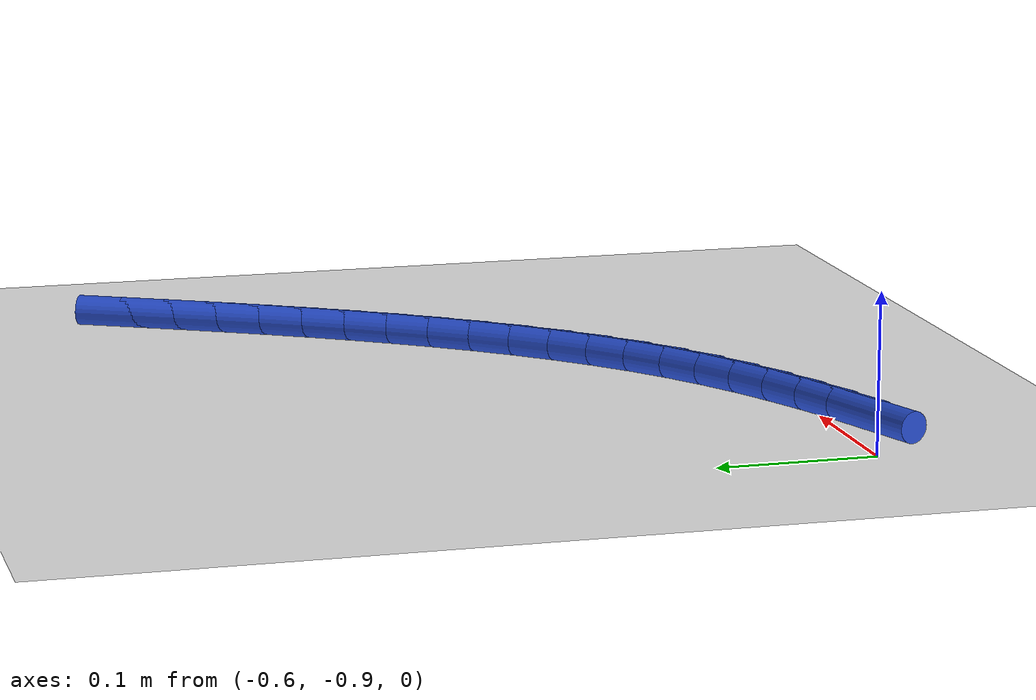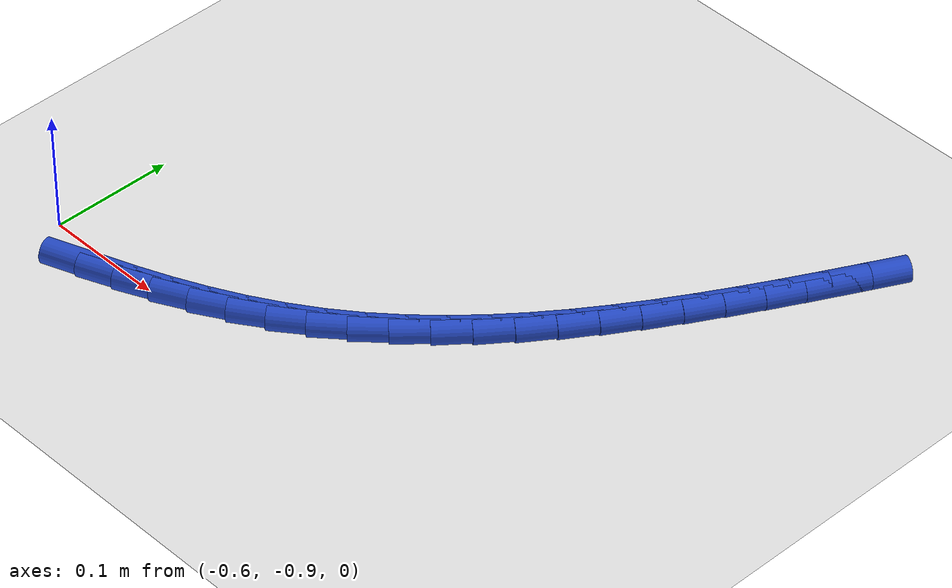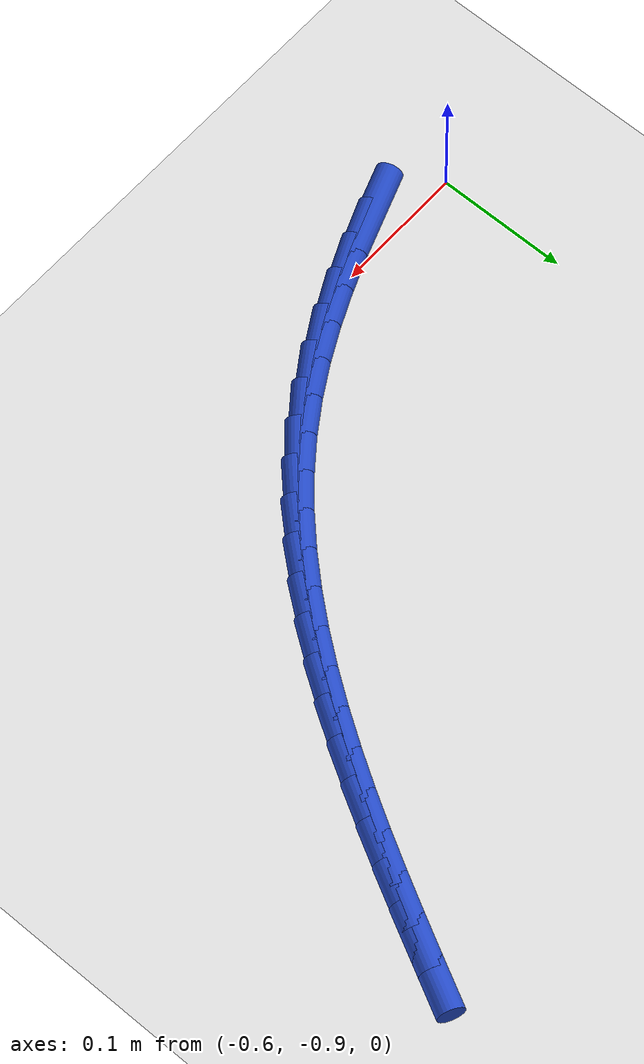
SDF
<sdf version="1.6">
 <world name="default">
  <model name="ground_plane">
   <static>1</static>
   <link name="link">
    <collision name="collision">
     <geometry><plane><normal>0 0 1</normal><size>100 100</size></plane></geometry>
     <surface><friction><ode><mu>100</mu><mu2>50</mu2></ode></friction></surface>
    </collision>
    <visual name="visual">
     <cast_shadows>0</cast_shadows>
     <geometry><plane><normal>0 0 1</normal><size>100 100</size></plane></geometry>
     <material>
      <script><uri>file://media/materials/scripts/gazebo.material</uri><name>Gazebo/WhiteGlow</name></script>
     </material>
    </visual>
   </link>
  </model>
  <model name="line">
   <link name="link_192">
    <pose>-0.5391859817253805 -0.918216924662417 0.01 0 1.57 0.349938042309466</pose>
    <collision name="collision">
     <geometry><cylinder><radius>0.01</radius><length>0.08</length></cylinder></geometry>
    </collision>
    <visual name="visual">
     <material>
      <script><name>Gazebo/Blue</name><uri>file://media/materials/scripts/gazebo.material</uri></script>
     </material>
     <geometry><cylinder><radius>0.01</radius><length>0.08</length></cylinder></geometry>
    </visual>
   </link>
   <link name="link_193">
    <pose>-0.5111279198154488 -0.9079769025599376 0.01 0 1.57 0.38640687018755976</pose>
    <collision name="collision">
     <geometry><cylinder><radius>0.01</radius><length>0.08</length></cylinder></geometry>
    </collision>
    <visual name="visual">
     <material>
      <script><name>Gazebo/Blue</name><uri>file://media/materials/scripts/gazebo.material</uri></script>
     </material>
     <geometry><cylinder><radius>0.01</radius><length>0.08</length></cylinder></geometry>
    </visual>
   </link>
   <link name="link_194">
    <pose>-0.4835524529734485 -0.8967575248321364 0.01 0 1.57 0.4286535217318709</pose>
    <collision name="collision">
     <geometry><cylinder><radius>0.01</radius><length>0.08</length></cylinder></geometry>
    </collision>
    <visual name="visual">
     <material>
      <script><name>Gazebo/Blue</name><uri>file://media/materials/scripts/gazebo.material</uri></script>
     </material>
     <geometry><cylinder><radius>0.01</radius><length>0.08</length></cylinder></geometry>
    </visual>
   </link>
   <link name="link_195">
    <pose>-0.4566134968838005 -0.884446628228901 0.01 0 1.57 0.4770278450383492</pose>
    <collision name="collision">
     <geometry><cylinder><radius>0.01</radius><length>0.08</length></cylinder></geometry>
    </collision>
    <visual name="visual">
     <material>
      <script><name>Gazebo/Blue</name><uri>file://media/materials/scripts/gazebo.material</uri></script>
     </material>
     <geometry><cylinder><radius>0.01</radius><length>0.08</length></cylinder></geometry>
    </visual>
   </link>
   <link name="link_196">
    <pose>-0.43046496723092553 -0.870932049500119 0.01 0 1.57 0.5318546804133581</pose>
    <collision name="collision">
     <geometry><cylinder><radius>0.01</radius><length>0.08</length></cylinder></geometry>
    </collision>
    <visual name="visual">
     <material>
      <script><name>Gazebo/Blue</name><uri>file://media/materials/scripts/gazebo.material</uri></script>
     </material>
     <geometry><cylinder><radius>0.01</radius><length>0.08</length></cylinder></geometry>
    </visual>
   </link>
   <link name="link_197">
    <pose>-0.4052607796992438 -0.8561016253956775 0.01 0 1.57 0.5933770984168789</pose>
    <collision name="collision">
     <geometry><cylinder><radius>0.01</radius><length>0.08</length></cylinder></geometry>
    </collision>
    <visual name="visual">
     <material>
      <script><name>Gazebo/Blue</name><uri>file://media/materials/scripts/gazebo.material</uri></script>
     </material>
     <geometry><cylinder><radius>0.01</radius><length>0.08</length></cylinder></geometry>
    </visual>
   </link>
   <link name="link_198">
    <pose>-0.38115484997317733 -0.839843192665465 0.01 0 1.57 0.659875297042908</pose>
    <collision name="collision">
     <geometry><cylinder><radius>0.01</radius><length>0.08</length></cylinder></geometry>
    </collision>
    <visual name="visual">
     <material>
      <script><name>Gazebo/Blue</name><uri>file://media/materials/scripts/gazebo.material</uri></script>
     </material>
     <geometry><cylinder><radius>0.01</radius><length>0.08</length></cylinder></geometry>
    </visual>
   </link>
   <link name="link_199">
    <pose>-0.35826386205185823 -0.8220819580318626 0.01 0 1.57 0.7235584872093481</pose>
    <collision name="collision">
     <geometry><cylinder><radius>0.01</radius><length>0.08</length></cylinder></geometry>
    </collision>
    <visual name="visual">
     <material>
      <script><name>Gazebo/Blue</name><uri>file://media/materials/scripts/gazebo.material</uri></script>
     </material>
     <geometry><cylinder><radius>0.01</radius><length>0.08</length></cylinder></geometry>
    </visual>
   </link>
   <link name="link_200">
    <pose>-0.33654889305603963 -0.8028993130560479 0.01 0 1.57 0.7820733373587231</pose>
    <collision name="collision">
     <geometry><cylinder><radius>0.01</radius><length>0.08</length></cylinder></geometry>
    </collision>
    <visual name="visual">
     <material>
      <script><name>Gazebo/Blue</name><uri>file://media/materials/scripts/gazebo.material</uri></script>
     </material>
     <geometry><cylinder><radius>0.01</radius><length>0.08</length></cylinder></geometry>
    </visual>
   </link>
   <link name="link_201">
    <pose>-0.315930374119074 -0.7824174462553238 0.01 0 1.57 0.8352171901902029</pose>
    <collision name="collision">
     <geometry><cylinder><radius>0.01</radius><length>0.08</length></cylinder></geometry>
    </collision>
    <visual name="visual">
     <material>
      <script><name>Gazebo/Blue</name><uri>file://media/materials/scripts/gazebo.material</uri></script>
     </material>
     <geometry><cylinder><radius>0.01</radius><length>0.08</length></cylinder></geometry>
    </visual>
   </link>
   <link name="link_202">
    <pose>-0.2963287362526029 -0.7607585462691574 0.01 0 1.57 0.8829514070810424</pose>
    <collision name="collision">
     <geometry><cylinder><radius>0.01</radius><length>0.08</length></cylinder></geometry>
    </collision>
    <visual name="visual">
     <material>
      <script><name>Gazebo/Blue</name><uri>file://media/materials/scripts/gazebo.material</uri></script>
     </material>
     <geometry><cylinder><radius>0.01</radius><length>0.08</length></cylinder></geometry>
    </visual>
   </link>
   <link name="link_203">
    <pose>-0.27766441046826756 -0.7380448017370149 0.01 0 1.57 0.9253552267350579</pose>
    <collision name="collision">
     <geometry><cylinder><radius>0.01</radius><length>0.08</length></cylinder></geometry>
    </collision>
    <visual name="visual">
     <material>
      <script><name>Gazebo/Blue</name><uri>file://media/materials/scripts/gazebo.material</uri></script>
     </material>
     <geometry><cylinder><radius>0.01</radius><length>0.08</length></cylinder></geometry>
    </visual>
   </link>
   <link name="link_204">
    <pose>-0.2598578277777086 -0.7143984012983619 0.01 0 1.57 0.96258291801277</pose>
    <collision name="collision">
     <geometry><cylinder><radius>0.01</radius><length>0.08</length></cylinder></geometry>
    </collision>
    <visual name="visual">
     <material>
      <script><name>Gazebo/Blue</name><uri>file://media/materials/scripts/gazebo.material</uri></script>
     </material>
     <geometry><cylinder><radius>0.01</radius><length>0.08</length></cylinder></geometry>
    </visual>
   </link>
   <link name="link_205">
    <pose>-0.2428294191925675 -0.6899415335926653 0.01 0 1.57 0.994827757308619</pose>
    <collision name="collision">
     <geometry><cylinder><radius>0.01</radius><length>0.08</length></cylinder></geometry>
    </collision>
    <visual name="visual">
     <material>
      <script><name>Gazebo/Blue</name><uri>file://media/materials/scripts/gazebo.material</uri></script>
     </material>
     <geometry><cylinder><radius>0.01</radius><length>0.08</length></cylinder></geometry>
    </visual>
   </link>
   <link name="link_206">
    <pose>-0.2264996157244849 -0.6647963872593904 0.01 0 1.57 1.022293787869417</pose>
    <collision name="collision">
     <geometry><cylinder><radius>0.01</radius><length>0.08</length></cylinder></geometry>
    </collision>
    <visual name="visual">
     <material>
      <script><name>Gazebo/Blue</name><uri>file://media/materials/scripts/gazebo.material</uri></script>
     </material>
     <geometry><cylinder><radius>0.01</radius><length>0.08</length></cylinder></geometry>
    </visual>
   </link>
   <link name="link_207">
    <pose>-0.2107888483851029 -0.6390851509380052 0.01 0 1.57 1.0451747598311993</pose>
    <collision name="collision">
     <geometry><cylinder><radius>0.01</radius><length>0.08</length></cylinder></geometry>
    </collision>
    <visual name="visual">
     <material>
      <script><name>Gazebo/Blue</name><uri>file://media/materials/scripts/gazebo.material</uri></script>
     </material>
     <geometry><cylinder><radius>0.01</radius><length>0.08</length></cylinder></geometry>
    </visual>
   </link>
   <link name="link_208">
    <pose>-0.19561754818606206 -0.6129300132679747 0.01 0 1.57 1.0636389267598962</pose>
    <collision name="collision">
     <geometry><cylinder><radius>0.01</radius><length>0.08</length></cylinder></geometry>
    </collision>
    <visual name="visual">
     <material>
      <script><name>Gazebo/Blue</name><uri>file://media/materials/scripts/gazebo.material</uri></script>
     </material>
     <geometry><cylinder><radius>0.01</radius><length>0.08</length></cylinder></geometry>
    </visual>
   </link>
   <link name="link_209">
    <pose>-0.1809061461390036 -0.5864531628887656 0.01 0 1.57 1.0778181954689197</pose>
    <collision name="collision">
     <geometry><cylinder><radius>0.01</radius><length>0.08</length></cylinder></geometry>
    </collision>
    <visual name="visual">
     <material>
      <script><name>Gazebo/Blue</name><uri>file://media/materials/scripts/gazebo.material</uri></script>
     </material>
     <geometry><cylinder><radius>0.01</radius><length>0.08</length></cylinder></geometry>
    </visual>
   </link>
   <link name="link_210">
    <pose>-0.1665750732555684 -0.5597767884398436 0.01 0 1.57 1.0878002380902496</pose>
    <collision name="collision">
     <geometry><cylinder><radius>0.01</radius><length>0.08</length></cylinder></geometry>
    </collision>
    <visual name="visual">
     <material>
      <script><name>Gazebo/Blue</name><uri>file://media/materials/scripts/gazebo.material</uri></script>
     </material>
     <geometry><cylinder><radius>0.01</radius><length>0.08</length></cylinder></geometry>
    </visual>
   </link>
   <link name="link_211">
    <pose>-0.15254476054739818 -0.5330230785606761 0.01 0 1.57 1.093778632649797</pose>
    <collision name="collision">
     <geometry><cylinder><radius>0.01</radius><length>0.08</length></cylinder></geometry>
    </collision>
    <visual name="visual">
     <material>
      <script><name>Gazebo/Blue</name><uri>file://media/materials/scripts/gazebo.material</uri></script>
     </material>
     <geometry><cylinder><radius>0.01</radius><length>0.08</length></cylinder></geometry>
    </visual>
   </link>
  </model>
 </world>
</sdf>
